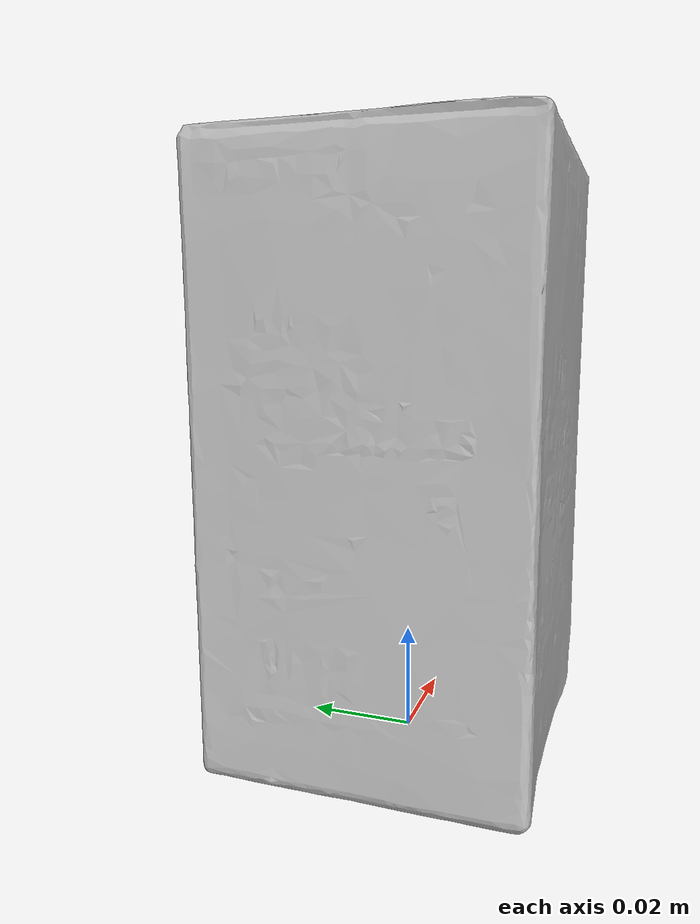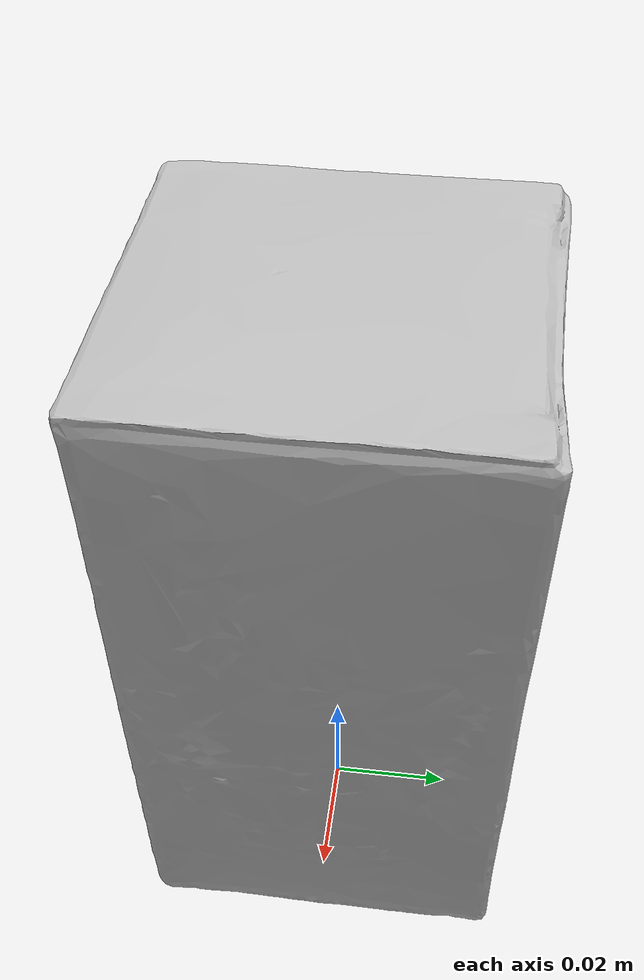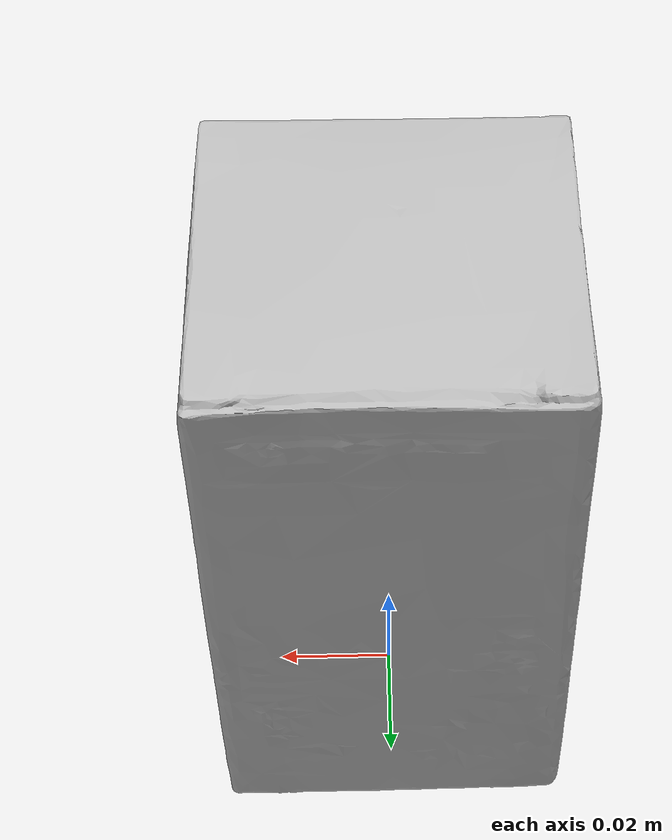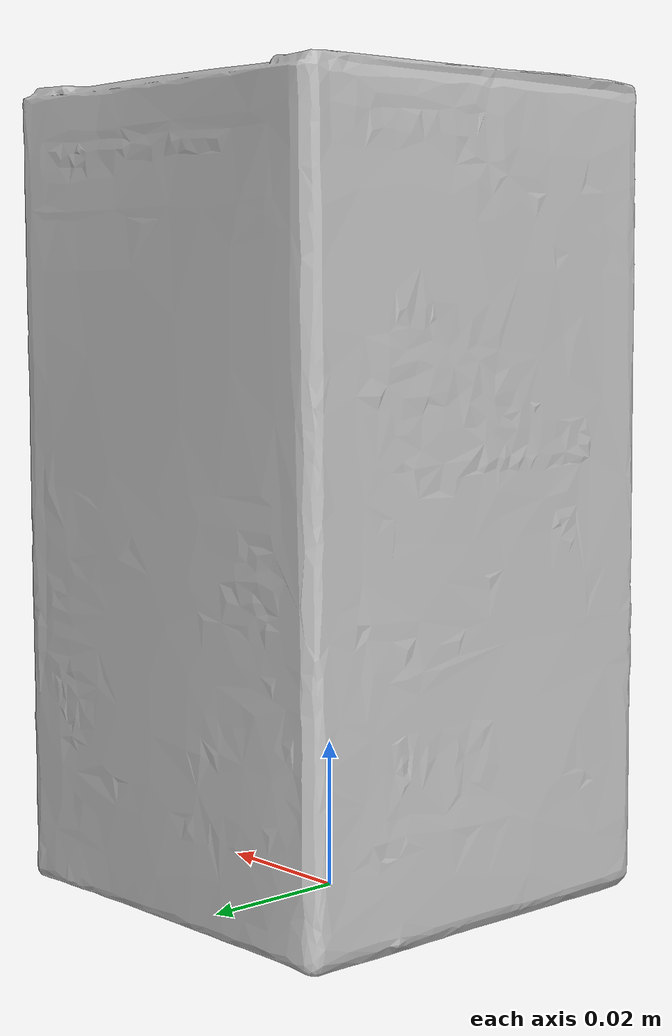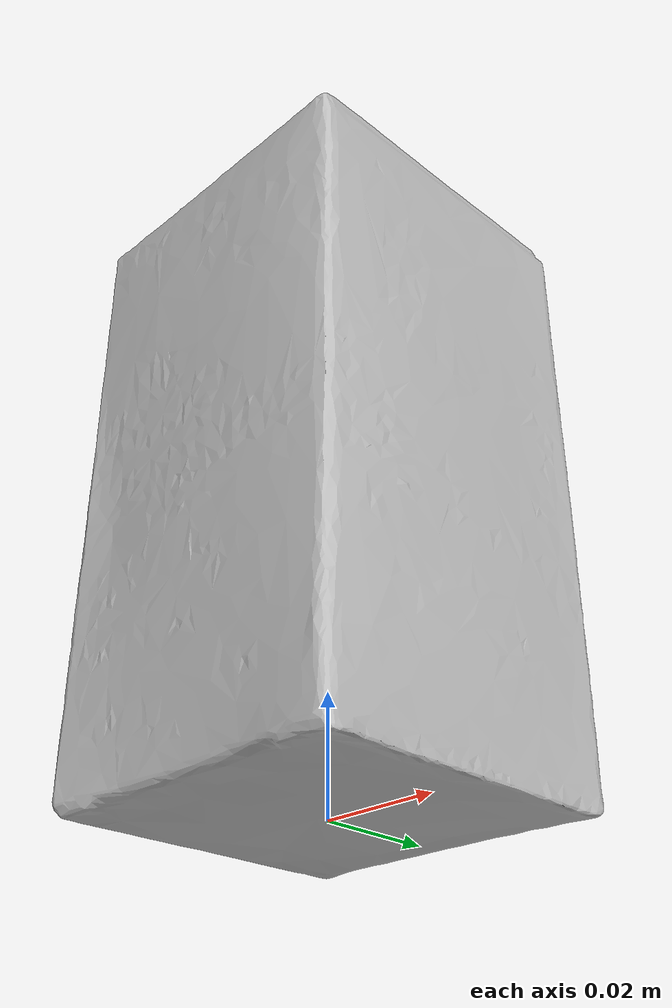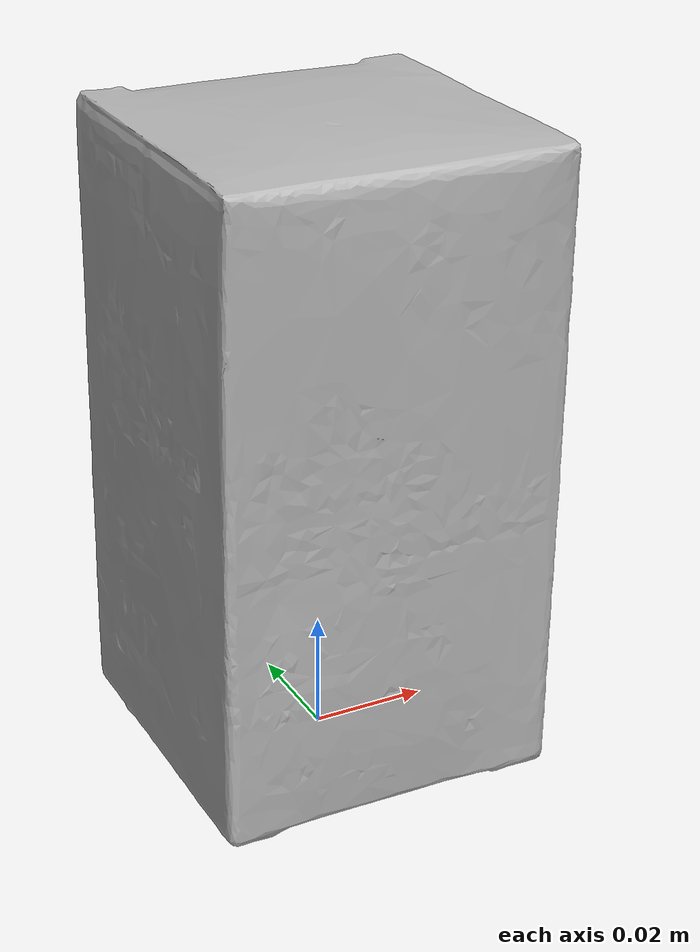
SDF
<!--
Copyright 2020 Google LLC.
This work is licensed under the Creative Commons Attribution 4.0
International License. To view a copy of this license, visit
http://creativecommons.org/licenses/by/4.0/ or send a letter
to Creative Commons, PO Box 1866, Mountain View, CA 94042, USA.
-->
<?xml version="1.0" ?>
<sdf version="1.6">
  <model name="Ultra_JarroDophilus">
    <link name="link_0">
      <visual name="visual">
        <geometry>
          <mesh>
            <uri>meshes/model.obj</uri>
          </mesh>
        </geometry>
      </visual>
      <collision name="collision_0">
        <geometry>
          <mesh>
            <uri>meshes/model.obj</uri>
          </mesh>
        </geometry>
      </collision>
    </link>
  </model>
</sdf>
